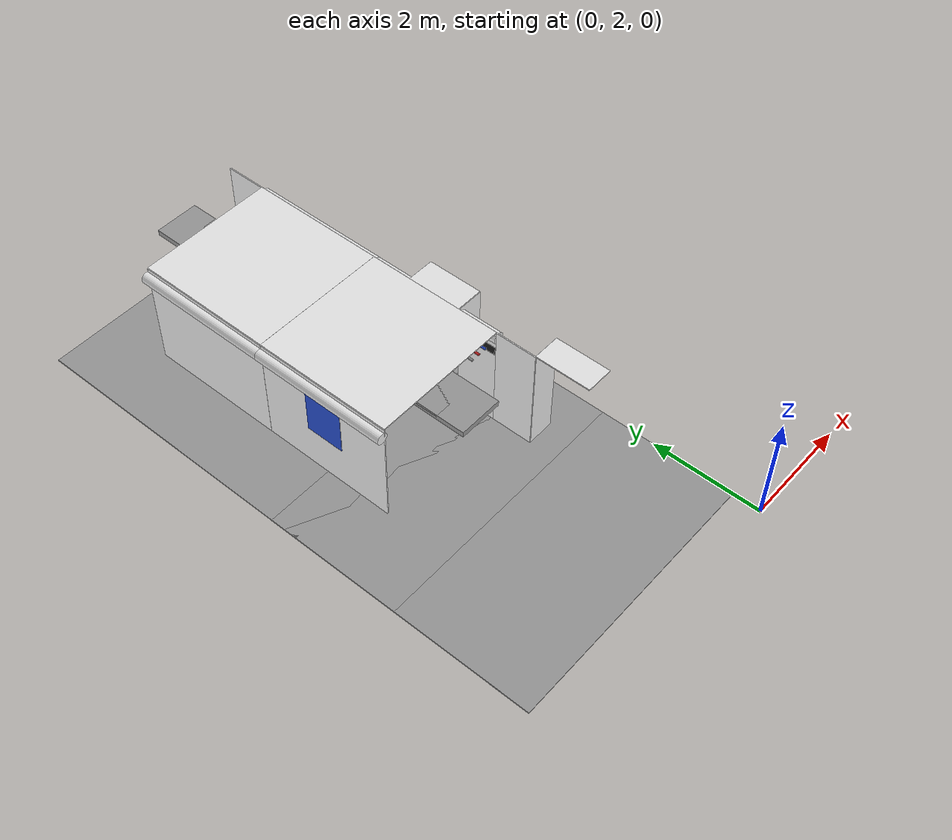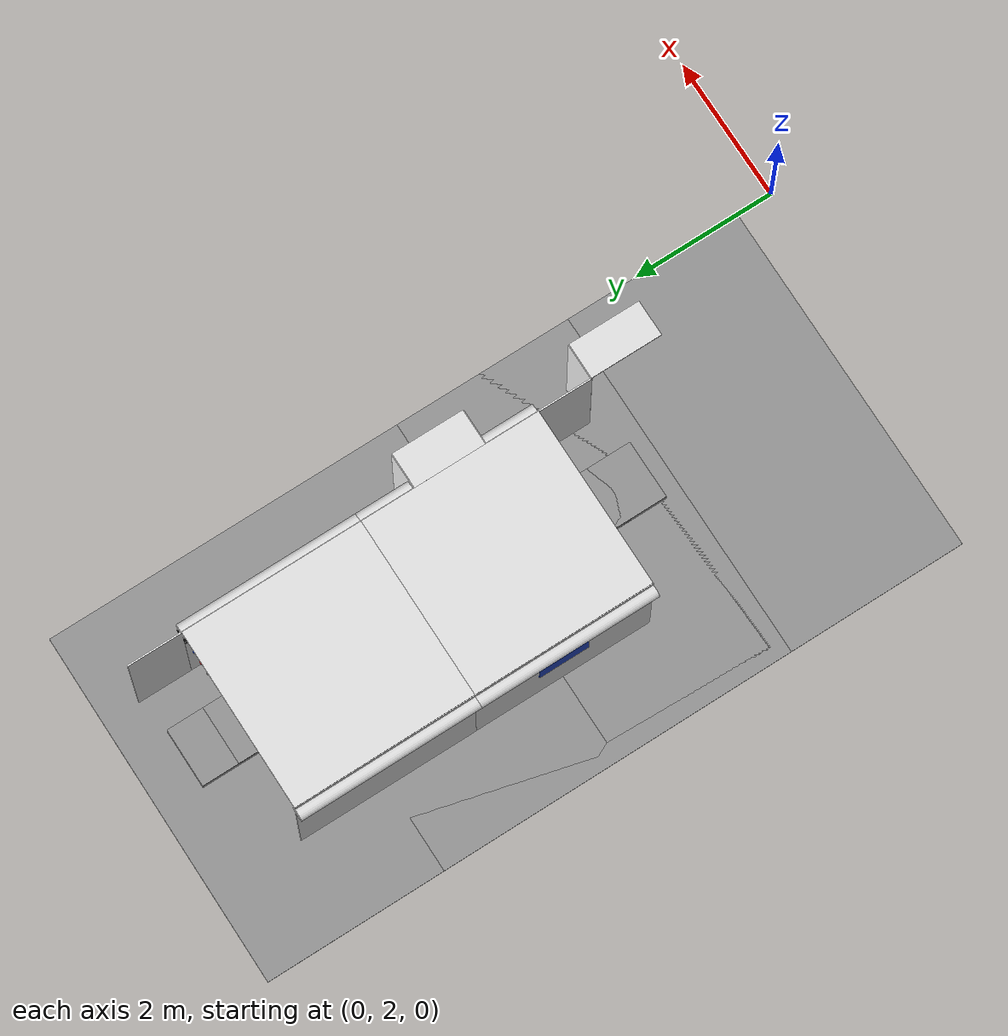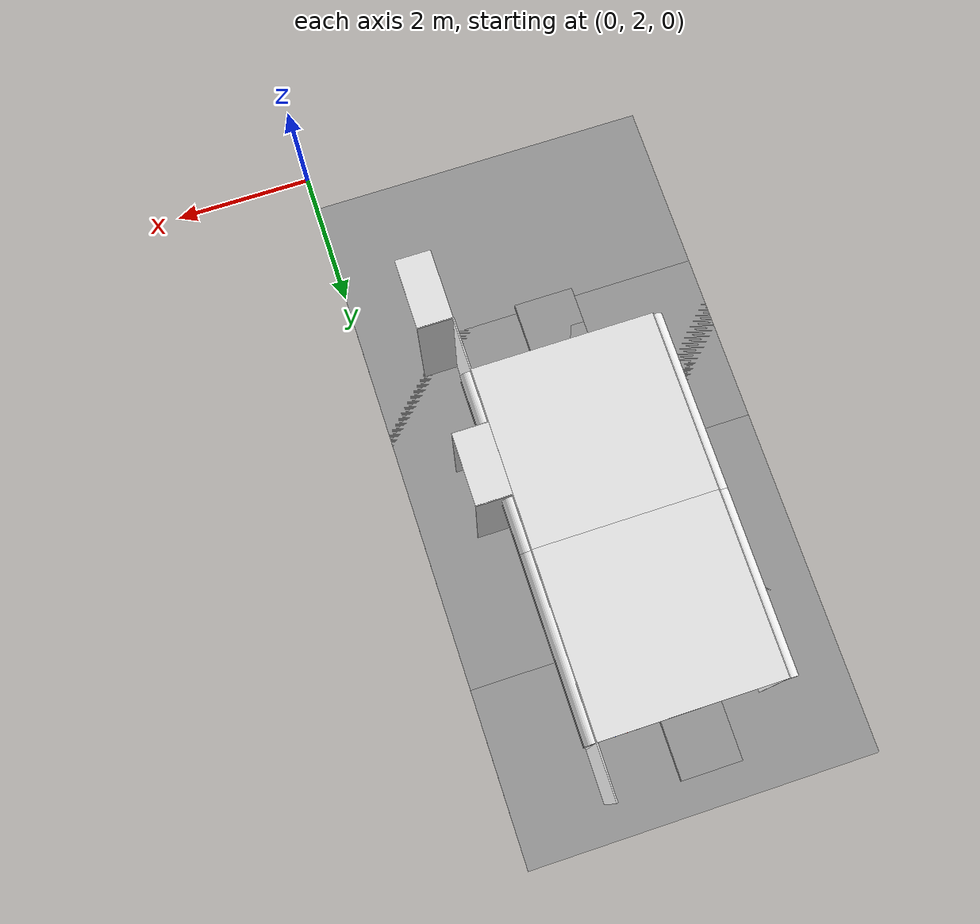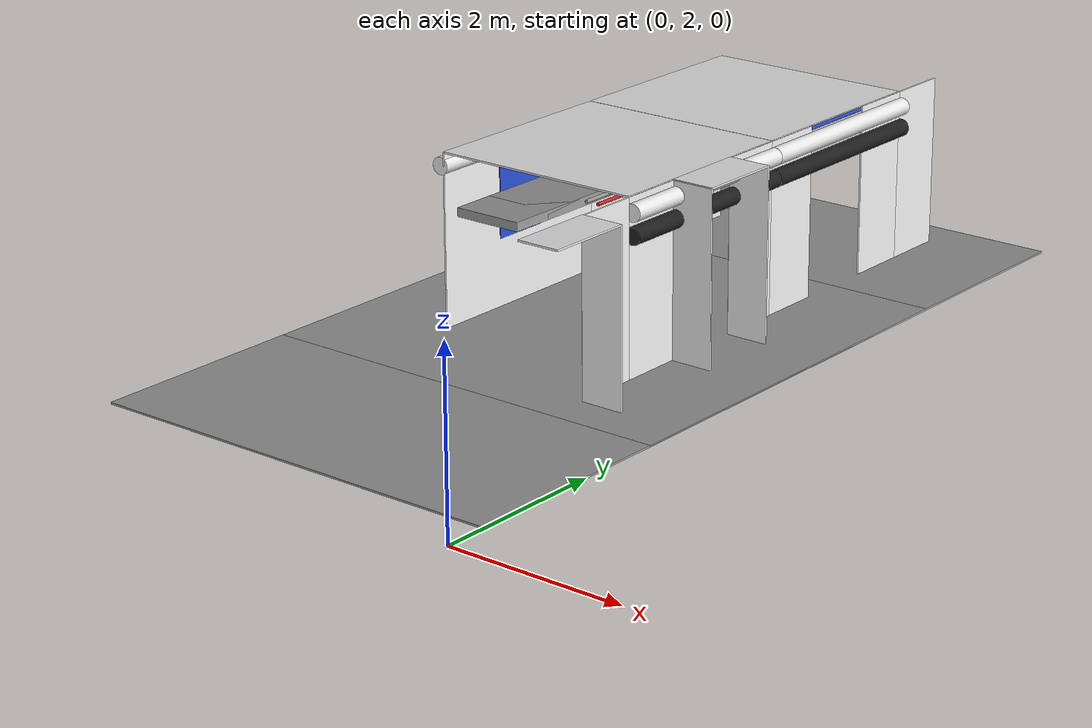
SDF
<sdf version="1.6">
 <world name="default">
  <model name="ceiling_1_-1_2_2_1">
   <pose>-2.5 6.0 1.7 0.0 0.0 0.0</pose>
   <link name="link_1">
    <visual name="visual">
     <geometry><box><size>0.8 1 0.1</size></box></geometry>
     <material>
      <script><uri>file://media/materials/scripts/gazebo.material</uri><name>Gazebo/Grey</name></script>
     </material>
    </visual>
    <collision name="collision"><geometry><box><size>0.8 1 0.1</size></box></geometry></collision>
   </link>
   <static>1</static>
  </model>
  <model name="wall_right_front_left_-1_2_0_1">
   <static>1</static>
   <pose>-1.25 5.875 1.0 0.0 0.0 1.57</pose>
   <link name="link">
    <collision name="collision"><geometry><box><size>0.75 0.02 2.0</size></box></geometry></collision>
    <visual name="visual">
     <material>
      <script><name>Gazebo/White</name><uri>file://media/materials/scripts/gazebo.material</uri></script>
     </material>
     <geometry><box><size>0.75 0.02 2.0</size></box></geometry>
    </visual>
   </link>
  </model>
  <model name="wall_right_inside_left_-1_2_0_1">
   <static>1</static>
   <pose>-1.0 5.5 1.0 0.0 0.0 0.0</pose>
   <link name="link">
    <collision name="collision"><geometry><box><size>0.5 0.02 2</size></box></geometry></collision>
    <visual name="visual">
     <material>
      <script><name>Gazebo/White</name><uri>file://media/materials/scripts/gazebo.material</uri></script>
     </material>
     <geometry><box><size>0.5 0.02 2</size></box></geometry>
    </visual>
   </link>
  </model>
  <model name="wall_right_inside_top_-1_2_0_1">
   <static>1</static>
   <pose>-1.0 5.0 2.0 1.57 0.0 1.57</pose>
   <link name="link">
    <collision name="collision"><geometry><box><size>1 0.02 0.5</size></box></geometry></collision>
    <visual name="visual">
     <material>
      <script><name>Gazebo/White</name><uri>file://media/materials/scripts/gazebo.material</uri></script>
     </material>
     <geometry><box><size>1 0.02 0.5</size></box></geometry>
    </visual>
   </link>
  </model>
  <model name="wall_bottom_-1_2_0_1">
   <static>1</static>
   <pose>-2.5 5.0 0.0 0.0 0.0 0.0</pose>
   <link name="link">
    <collision name="collision"><geometry><box><size>5.0 5.0 0.02</size></box></geometry></collision>
    <visual name="visual">
     <material>
      <script><name>Gazebo/Grey</name><uri>file://media/materials/scripts/gazebo.material</uri></script>
     </material>
     <geometry><box><size>5.0 5.0 0.02</size></box></geometry>
    </visual>
   </link>
  </model>
  <model name="wall_left_-1_3_0_1">
   <static>1</static>
   <pose>-3.75 7.5 1.0 0.0 0.0 1.57</pose>
   <link name="link">
    <collision name="collision"><geometry><box><size>2.5 0.02 2.0</size></box></geometry></collision>
    <visual name="visual">
     <material>
      <script><name>Gazebo/White</name><uri>file://media/materials/scripts/gazebo.material</uri></script>
     </material>
     <geometry><box><size>2.5 0.02 2.0</size></box></geometry>
    </visual>
   </link>
  </model>
  <model name="wall_top_-1_3_0_1">
   <static>1</static>
   <pose>-2.5 7.5 2.0 1.57 0.0 0.0</pose>
   <link name="link">
    <collision name="collision"><geometry><box><size>2.5 0.02 2.5</size></box></geometry></collision>
    <visual name="visual">
     <material>
      <script><name>Gazebo/White</name><uri>file://media/materials/scripts/gazebo.material</uri></script>
     </material>
     <geometry><box><size>2.5 0.02 2.5</size></box></geometry>
    </visual>
   </link>
  </model>
  <model name="ceiling_1_-1_3_0_1">
   <pose>-2.5 7.5 1.7 0.0 0.0 0.0</pose>
   <link name="link_1">
    <visual name="visual">
     <geometry><box><size>0.8 1 0.1</size></box></geometry>
     <material>
      <script><uri>file://media/materials/scripts/gazebo.material</uri><name>Gazebo/Grey</name></script>
     </material>
    </visual>
    <collision name="collision"><geometry><box><size>0.8 1 0.1</size></box></geometry></collision>
   </link>
   <static>1</static>
  </model>
  <model name="ceiling_1_-1_3_1_1">
   <pose>-2.5 6.5 1.7 0.0 0.0 0.0</pose>
   <link name="link_1">
    <visual name="visual">
     <geometry><box><size>0.8 1 0.1</size></box></geometry>
     <material>
      <script><uri>file://media/materials/scripts/gazebo.material</uri><name>Gazebo/Grey</name></script>
     </material>
    </visual>
    <collision name="collision"><geometry><box><size>0.8 1 0.1</size></box></geometry></collision>
   </link>
   <static>1</static>
  </model>
  <model name="ceiling_1_-1_3_2_1">
   <pose>-2.5 8.5 1.7 0.0 0.0 0.0</pose>
   <link name="link_1">
    <visual name="visual">
     <geometry><box><size>0.8 1 0.1</size></box></geometry>
     <material>
      <script><uri>file://media/materials/scripts/gazebo.material</uri><name>Gazebo/Grey</name></script>
     </material>
    </visual>
    <collision name="collision"><geometry><box><size>0.8 1 0.1</size></box></geometry></collision>
   </link>
   <static>1</static>
  </model>
  <model name="white_pipe_left_-1_3_0_1">
   <static>1</static>
   <pose>-2.5 7.5 1.84 0.0 0.0 0.0</pose>
   <link name="link_0">
    <visual name="visual">
     <pose>-1.3 0 0 1.57 0 0</pose>
     <geometry><cylinder><radius>0.1</radius><length>2.5</length></cylinder></geometry>
     <material>
      <script><uri>file://media/materials/scripts/gazebo.material</uri><name>Gazebo/White</name></script>
     </material>
    </visual>
    <collision name="collision">
     <pose>-1.3 0 0 1.57 0 0</pose>
     <geometry><cylinder><radius>0.1</radius><length>2.5</length></cylinder></geometry>
    </collision>
   </link>
  </model>
  <model name="white_pipe_right_-1_3_0_1">
   <static>1</static>
   <pose>-2.5 7.5 1.84 0.0 0.0 0.0</pose>
   <link name="link_0">
    <visual name="visual">
     <pose>1.3 0 0 1.57 0 0</pose>
     <geometry><cylinder><radius>0.1</radius><length>2.5</length></cylinder></geometry>
     <material>
      <script><uri>file://media/materials/scripts/gazebo.material</uri><name>Gazebo/White</name></script>
     </material>
    </visual>
    <collision name="collision">
     <pose>1.3 0 0 1.57 0 0</pose>
     <geometry><cylinder><radius>0.1</radius><length>2.5</length></cylinder></geometry>
    </collision>
   </link>
  </model>
  <model name="black_pipe_right_-1_3_0_1">
   <static>1</static>
   <pose>-2.5 7.5 1.84 0.0 0.0 0.0</pose>
   <link name="link_0">
    <visual name="visual">
     <pose>1.3 0 -0.25 1.57 0 0</pose>
     <geometry><cylinder><radius>0.1</radius><length>2.5</length></cylinder></geometry>
     <material>
      <script><uri>file://media/materials/scripts/gazebo.material</uri><name>Gazebo/Black</name></script>
     </material>
    </visual>
    <collision name="collision">
     <pose>1.3 0 -0.25 1.57 0 0</pose>
     <geometry><cylinder><radius>0.1</radius><length>2.5</length></cylinder></geometry>
    </collision>
   </link>
  </model>
  <model name="grey_pipe_right_-1_3_0_1">
   <static>1</static>
   <pose>-2.5 7.5 1.84 0.0 0.0 0.0</pose>
   <link name="link_0">
    <visual name="visual">
     <pose>0.7 0 0 1.57 0 0</pose>
     <geometry><cylinder><radius>0.02</radius><length>2.5</length></cylinder></geometry>
     <material>
      <script><uri>file://media/materials/scripts/gazebo.material</uri><name>Gazebo/Grey</name></script>
     </material>
    </visual>
    <collision name="collision">
     <pose>0.7 0 0 1.57 0 0</pose>
     <geometry><cylinder><radius>0.02</radius><length>2.5</length></cylinder></geometry>
    </collision>
   </link>
  </model>
  <model name="red_pipe_right_-1_3_0_1">
   <static>1</static>
   <pose>-2.5 7.5 1.84 0.0 0.0 0.0</pose>
   <link name="link_0">
    <visual name="visual">
     <pose>0.85 0 0 1.57 0 0</pose>
     <geometry><cylinder><radius>0.02</radius><length>2.5</length></cylinder></geometry>
     <material>
      <script><uri>file://media/materials/scripts/gazebo.material</uri><name>Gazebo/Red</name></script>
     </material>
    </visual>
    <collision name="collision">
     <pose>0.85 0 0 1.57 0 0</pose>
     <geometry><cylinder><radius>0.02</radius><length>2.5</length></cylinder></geometry>
    </collision>
   </link>
  </model>
  <model name="blue_pipe_right_-1_3_0_1">
   <static>1</static>
   <pose>-2.5 7.5 1.84 0.0 0.0 0.0</pose>
   <link name="link_0">
    <visual name="visual">
     <pose>1 0 0 1.57 0 0</pose>
     <geometry><cylinder><radius>0.02</radius><length>2.5</length></cylinder></geometry>
     <material>
      <script><uri>file://media/materials/scripts/gazebo.material</uri><name>Gazebo/Blue</name></script>
     </material>
    </visual>
    <collision name="collision">
     <pose>1 0 0 1.57 0 0</pose>
     <geometry><cylinder><radius>0.02</radius><length>2.5</length></cylinder></geometry>
    </collision>
   </link>
  </model>
  <model name="panel_-1_3_0_1">
   <static>1</static>
   <pose>-3.75 7.5 1.3 0.0 0.0 0.0</pose>
   <link name="link">
    <collision name="collision"><geometry><box><size>0.04 0.7 1</size></box></geometry></collision>
    <visual name="visual">
     <material>
      <script><name>Gazebo/Blue</name><uri>file://media/materials/scripts/gazebo.material</uri></script>
     </material>
     <geometry><box><size>0.04 0.7 1</size></box></geometry>
    </visual>
   </link>
  </model>
  <model name="wall_right_front_left_-1_3_0_1">
   <static>1</static>
   <pose>-1.25 8.375 1.0 0.0 0.0 1.57</pose>
   <link name="link">
    <collision name="collision"><geometry><box><size>0.75 0.02 2.0</size></box></geometry></collision>
    <visual name="visual">
     <material>
      <script><name>Gazebo/White</name><uri>file://media/materials/scripts/gazebo.material</uri></script>
     </material>
     <geometry><box><size>0.75 0.02 2.0</size></box></geometry>
    </visual>
   </link>
  </model>
  <model name="wall_right_front_right_-1_3_0_1">
   <static>1</static>
   <pose>-1.25 6.625 1.0 0.0 0.0 1.57</pose>
   <link name="link">
    <collision name="collision"><geometry><box><size>0.75 0.02 2.0</size></box></geometry></collision>
    <visual name="visual">
     <material>
      <script><name>Gazebo/White</name><uri>file://media/materials/scripts/gazebo.material</uri></script>
     </material>
     <geometry><box><size>0.75 0.02 2.0</size></box></geometry>
    </visual>
   </link>
  </model>
  <model name="wall_right_front_up_-1_3_0_1">
   <static>1</static>
   <pose>-1.25 7.5 2.0 0.0 0.0 1.57</pose>
   <link name="link">
    <collision name="collision"><geometry><box><size>1.0 0.02 0.001</size></box></geometry></collision>
    <visual name="visual">
     <material>
      <script><name>Gazebo/White</name><uri>file://media/materials/scripts/gazebo.material</uri></script>
     </material>
     <geometry><box><size>1.0 0.02 0.001</size></box></geometry>
    </visual>
   </link>
  </model>
  <model name="wall_right_inside_left_-1_3_0_1">
   <static>1</static>
   <pose>-1.0 8.0 1.0 0.0 0.0 0.0</pose>
   <link name="link">
    <collision name="collision"><geometry><box><size>0.5 0.02 2</size></box></geometry></collision>
    <visual name="visual">
     <material>
      <script><name>Gazebo/White</name><uri>file://media/materials/scripts/gazebo.material</uri></script>
     </material>
     <geometry><box><size>0.5 0.02 2</size></box></geometry>
    </visual>
   </link>
  </model>
  <model name="wall_right_inside_right_-1_3_0_1">
   <static>1</static>
   <pose>-1.0 7.0 1.0 0.0 0.0 0.0</pose>
   <link name="link">
    <collision name="collision"><geometry><box><size>0.5 0.02 2</size></box></geometry></collision>
    <visual name="visual">
     <material>
      <script><name>Gazebo/White</name><uri>file://media/materials/scripts/gazebo.material</uri></script>
     </material>
     <geometry><box><size>0.5 0.02 2</size></box></geometry>
    </visual>
   </link>
  </model>
  <model name="wall_right_inside_top_-1_3_0_1">
   <static>1</static>
   <pose>-1.0 7.5 2.0 1.57 0.0 1.57</pose>
   <link name="link">
    <collision name="collision"><geometry><box><size>1 0.02 0.5</size></box></geometry></collision>
    <visual name="visual">
     <material>
      <script><name>Gazebo/White</name><uri>file://media/materials/scripts/gazebo.material</uri></script>
     </material>
     <geometry><box><size>1 0.02 0.5</size></box></geometry>
    </visual>
   </link>
  </model>
  <model name="wall_bottom_-1_3_0_1">
   <static>1</static>
   <pose>-2.5 7.5 0.0 0.0 0.0 0.0</pose>
   <link name="link">
    <collision name="collision"><geometry><box><size>5.0 5.0 0.02</size></box></geometry></collision>
    <visual name="visual">
     <material>
      <script><name>Gazebo/Grey</name><uri>file://media/materials/scripts/gazebo.material</uri></script>
     </material>
     <geometry><box><size>5.0 5.0 0.02</size></box></geometry>
    </visual>
   </link>
  </model>
  <model name="wall_left_-1_4_0_1">
   <static>1</static>
   <pose>-3.75 10.0 1.0 0.0 0.0 1.57</pose>
   <link name="link">
    <collision name="collision"><geometry><box><size>2.5 0.02 2.0</size></box></geometry></collision>
    <visual name="visual">
     <material>
      <script><name>Gazebo/White</name><uri>file://media/materials/scripts/gazebo.material</uri></script>
     </material>
     <geometry><box><size>2.5 0.02 2.0</size></box></geometry>
    </visual>
   </link>
  </model>
  <model name="wall_top_-1_4_0_1">
   <static>1</static>
   <pose>-2.5 10.0 2.0 1.57 0.0 0.0</pose>
   <link name="link">
    <collision name="collision"><geometry><box><size>2.5 0.02 2.5</size></box></geometry></collision>
    <visual name="visual">
     <material>
      <script><name>Gazebo/White</name><uri>file://media/materials/scripts/gazebo.material</uri></script>
     </material>
     <geometry><box><size>2.5 0.02 2.5</size></box></geometry>
    </visual>
   </link>
  </model>
  <model name="ceiling_1_-1_4_0_1">
   <pose>-2.5 10.0 1.7 0.0 0.0 0.0</pose>
   <link name="link_1">
    <visual name="visual">
     <geometry><box><size>0.8 1 0.1</size></box></geometry>
     <material>
      <script><uri>file://media/materials/scripts/gazebo.material</uri><name>Gazebo/Grey</name></script>
     </material>
    </visual>
    <collision name="collision"><geometry><box><size>0.8 1 0.1</size></box></geometry></collision>
   </link>
   <static>1</static>
  </model>
  <model name="ceiling_1_-1_4_1_1">
   <pose>-2.5 9.0 1.7 0.0 0.0 0.0</pose>
   <link name="link_1">
    <visual name="visual">
     <geometry><box><size>0.8 1 0.1</size></box></geometry>
     <material>
      <script><uri>file://media/materials/scripts/gazebo.material</uri><name>Gazebo/Grey</name></script>
     </material>
    </visual>
    <collision name="collision"><geometry><box><size>0.8 1 0.1</size></box></geometry></collision>
   </link>
   <static>1</static>
  </model>
  <model name="ceiling_1_-1_4_2_1">
   <pose>-2.5 11.0 1.7 0.0 0.0 0.0</pose>
   <link name="link_1">
    <visual name="visual">
     <geometry><box><size>0.8 1 0.1</size></box></geometry>
     <material>
      <script><uri>file://media/materials/scripts/gazebo.material</uri><name>Gazebo/Grey</name></script>
     </material>
    </visual>
    <collision name="collision"><geometry><box><size>0.8 1 0.1</size></box></geometry></collision>
   </link>
   <static>1</static>
  </model>
  <model name="white_pipe_left_-1_4_0_1">
   <static>1</static>
   <pose>-2.5 10.0 1.84 0.0 0.0 0.0</pose>
   <link name="link_0">
    <visual name="visual">
     <pose>-1.3 0 0 1.57 0 0</pose>
     <geometry><cylinder><radius>0.1</radius><length>2.5</length></cylinder></geometry>
     <material>
      <script><uri>file://media/materials/scripts/gazebo.material</uri><name>Gazebo/White</name></script>
     </material>
    </visual>
    <collision name="collision">
     <pose>-1.3 0 0 1.57 0 0</pose>
     <geometry><cylinder><radius>0.1</radius><length>2.5</length></cylinder></geometry>
    </collision>
   </link>
  </model>
  <model name="white_pipe_right_-1_4_0_1">
   <static>1</static>
   <pose>-2.5 10.0 1.84 0.0 0.0 0.0</pose>
   <link name="link_0">
    <visual name="visual">
     <pose>1.3 0 0 1.57 0 0</pose>
     <geometry><cylinder><radius>0.1</radius><length>2.5</length></cylinder></geometry>
     <material>
      <script><uri>file://media/materials/scripts/gazebo.material</uri><name>Gazebo/White</name></script>
     </material>
    </visual>
    <collision name="collision">
     <pose>1.3 0 0 1.57 0 0</pose>
     <geometry><cylinder><radius>0.1</radius><length>2.5</length></cylinder></geometry>
    </collision>
   </link>
  </model>
  <model name="black_pipe_right_-1_4_0_1">
   <static>1</static>
   <pose>-2.5 10.0 1.84 0.0 0.0 0.0</pose>
   <link name="link_0">
    <visual name="visual">
     <pose>1.3 0 -0.25 1.57 0 0</pose>
     <geometry><cylinder><radius>0.1</radius><length>2.5</length></cylinder></geometry>
     <material>
      <script><uri>file://media/materials/scripts/gazebo.material</uri><name>Gazebo/Black</name></script>
     </material>
    </visual>
    <collision name="collision">
     <pose>1.3 0 -0.25 1.57 0 0</pose>
     <geometry><cylinder><radius>0.1</radius><length>2.5</length></cylinder></geometry>
    </collision>
   </link>
  </model>
  <model name="grey_pipe_right_-1_4_0_1">
   <static>1</static>
   <pose>-2.5 10.0 1.84 0.0 0.0 0.0</pose>
   <link name="link_0">
    <visual name="visual">
     <pose>0.7 0 0 1.57 0 0</pose>
     <geometry><cylinder><radius>0.02</radius><length>2.5</length></cylinder></geometry>
     <material>
      <script><uri>file://media/materials/scripts/gazebo.material</uri><name>Gazebo/Grey</name></script>
     </material>
    </visual>
    <collision name="collision">
     <pose>0.7 0 0 1.57 0 0</pose>
     <geometry><cylinder><radius>0.02</radius><length>2.5</length></cylinder></geometry>
    </collision>
   </link>
  </model>
  <model name="red_pipe_right_-1_4_0_1">
   <static>1</static>
   <pose>-2.5 10.0 1.84 0.0 0.0 0.0</pose>
   <link name="link_0">
    <visual name="visual">
     <pose>0.85 0 0 1.57 0 0</pose>
     <geometry><cylinder><radius>0.02</radius><length>2.5</length></cylinder></geometry>
     <material>
      <script><uri>file://media/materials/scripts/gazebo.material</uri><name>Gazebo/Red</name></script>
     </material>
    </visual>
    <collision name="collision">
     <pose>0.85 0 0 1.57 0 0</pose>
     <geometry><cylinder><radius>0.02</radius><length>2.5</length></cylinder></geometry>
    </collision>
   </link>
  </model>
  <model name="blue_pipe_right_-1_4_0_1">
   <static>1</static>
   <pose>-2.5 10.0 1.84 0.0 0.0 0.0</pose>
   <link name="link_0">
    <visual name="visual">
     <pose>1 0 0 1.57 0 0</pose>
     <geometry><cylinder><radius>0.02</radius><length>2.5</length></cylinder></geometry>
     <material>
      <script><uri>file://media/materials/scripts/gazebo.material</uri><name>Gazebo/Blue</name></script>
     </material>
    </visual>
    <collision name="collision">
     <pose>1 0 0 1.57 0 0</pose>
     <geometry><cylinder><radius>0.02</radius><length>2.5</length></cylinder></geometry>
    </collision>
   </link>
  </model>
  <model name="wall_right_front_left_-1_4_0_1">
   <static>1</static>
   <pose>-1.25 10.875 1.0 0.0 0.0 1.57</pose>
   <link name="link">
    <collision name="collision"><geometry><box><size>0.75 0.02 2.0</size></box></geometry></collision>
    <visual name="visual">
     <material>
      <script><name>Gazebo/White</name><uri>file://media/materials/scripts/gazebo.material</uri></script>
     </material>
     <geometry><box><size>0.75 0.02 2.0</size></box></geometry>
    </visual>
   </link>
  </model>
  <model name="wall_right_front_right_-1_4_0_1">
   <static>1</static>
   <pose>-1.25 9.125 1.0 0.0 0.0 1.57</pose>
   <link name="link">
    <collision name="collision"><geometry><box><size>0.75 0.02 2.0</size></box></geometry></collision>
    <visual name="visual">
     <material>
      <script><name>Gazebo/White</name><uri>file://media/materials/scripts/gazebo.material</uri></script>
     </material>
     <geometry><box><size>0.75 0.02 2.0</size></box></geometry>
    </visual>
   </link>
  </model>
  <model name="wall_right_front_up_-1_4_0_1">
   <static>1</static>
   <pose>-1.25 10.0 2.0 0.0 0.0 1.57</pose>
   <link name="link">
    <collision name="collision"><geometry><box><size>1.0 0.02 0.001</size></box></geometry></collision>
    <visual name="visual">
     <material>
      <script><name>Gazebo/White</name><uri>file://media/materials/scripts/gazebo.material</uri></script>
     </material>
     <geometry><box><size>1.0 0.02 0.001</size></box></geometry>
    </visual>
   </link>
  </model>
  <model name="wall_bottom_-1_4_0_1">
   <static>1</static>
   <pose>-2.5 10.0 0.0 0.0 0.0 0.0</pose>
   <link name="link">
    <collision name="collision"><geometry><box><size>5.0 5.0 0.02</size></box></geometry></collision>
    <visual name="visual">
     <material>
      <script><name>Gazebo/Grey</name><uri>file://media/materials/scripts/gazebo.material</uri></script>
     </material>
     <geometry><box><size>5.0 5.0 0.02</size></box></geometry>
    </visual>
   </link>
  </model>
  <model name="ceiling_1_-1_5_1_1">
   <pose>-2.5 11.5 1.7 0.0 0.0 0.0</pose>
   <link name="link_1">
    <visual name="visual">
     <geometry><box><size>0.8 1 0.1</size></box></geometry>
     <material>
      <script><uri>file://media/materials/scripts/gazebo.material</uri><name>Gazebo/Grey</name></script>
     </material>
    </visual>
    <collision name="collision"><geometry><box><size>0.8 1 0.1</size></box></geometry></collision>
   </link>
   <static>1</static>
  </model>
  <model name="wall_right_front_right_-1_5_0_1">
   <static>1</static>
   <pose>-1.25 11.625 1.0 0.0 0.0 1.57</pose>
   <link name="link">
    <collision name="collision"><geometry><box><size>0.75 0.02 2.0</size></box></geometry></collision>
    <visual name="visual">
     <material>
      <script><name>Gazebo/White</name><uri>file://media/materials/scripts/gazebo.material</uri></script>
     </material>
     <geometry><box><size>0.75 0.02 2.0</size></box></geometry>
    </visual>
   </link>
  </model>
 </world>
</sdf>
